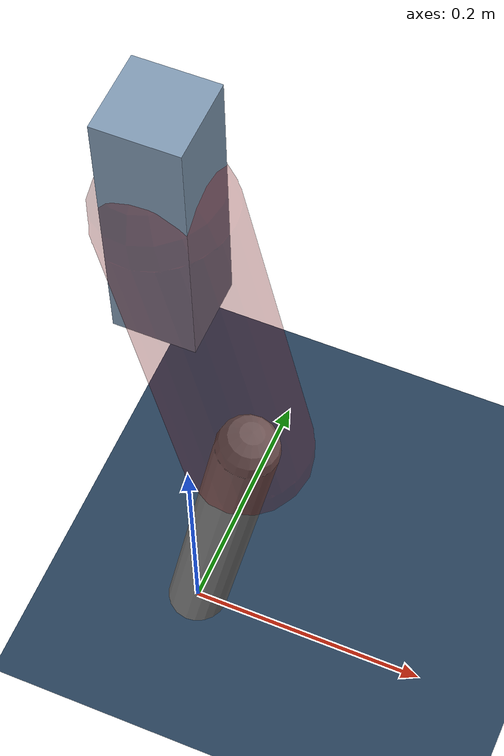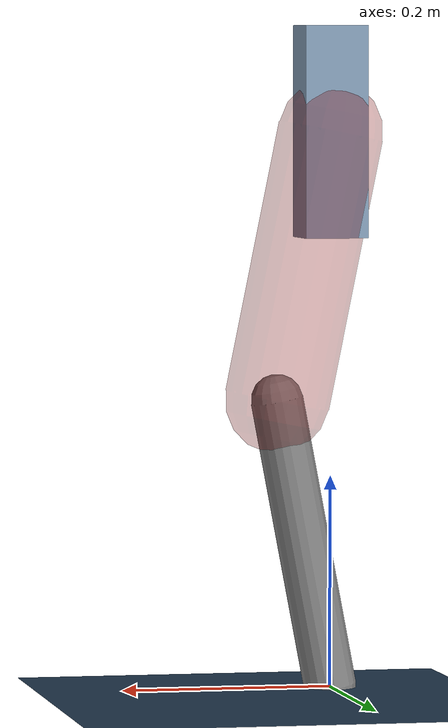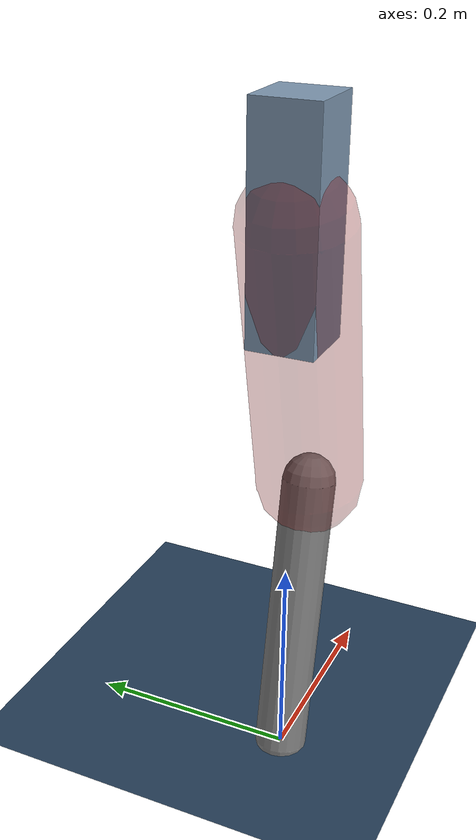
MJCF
<mujoco model="Hopper2D">
	<compiler inertiafromgeom="true" angle="radian" />
	<option timestep="0.001" integrator="implicit" cone="elliptic" solver="Newton" tolerance="1e-10" />

	<default>
		<geom contype="1" conaffinity="1" condim="3" friction="2 0.005 0.0001" solref="0.005 1" />
		<joint limited="true" damping="0.1" />
	</default>

	<asset>
		<texture name="skybox" type="skybox" builtin="gradient" rgb1=".4 .6 .8" rgb2="0 0 0" width="800" height="800" />
		<texture name="grid" type="2d" builtin="checker" rgb1=".1 .2 .3" rgb2=".2 .3 .4" width="300" height="300" mark="edge" markrgb=".2 .3 .4" />
		<material name="ground" texture="grid" texrepeat="1 1" texuniform="true" reflectance="0.1" />
		<material name="leg" rgba="0.5 0.6 0.7 1" />
	</asset>

	<worldbody>

		<geom name="floor" type="plane" size="5 5 0.25" material="ground" />

		<light directional="false" diffuse="0.8 0.8 0.8" specular="0.3 0.3 0.3" pos="0 0 2" dir="0 0 -1" />
		<light mode="targetbodycom" target="base" directional="false" diffuse="0.8 0.8 0.8" specular="0.3 0.3 0.3" pos="0 0 2" dir="0 0 -1" />

		<camera name="fixed" pos="0 -2 1" xyaxes="1 0 0 0 0 1" />
		<camera name="tracking" mode="trackcom" pos="0 -3 1" />

		<body name="root" pos="0 0 0.5261028903349421">
			<joint name="slide_x" type="slide" axis="1 0 0" range="-100 100" />
			<joint name="slide_z" type="slide" axis="0 0 1" range="0 10" />

			<body name="base" pos="0 0 0">
				<geom name="torso" type="box" size="0.03 0.03 0.1" mass="1.962" material="leg" />

				<body name="link1" pos="0 0 0" euler="0 1.3704373631431044 0">
					<joint type="hinge" axis="0 -1 0" pos="0 0 0" name="hinge1" limited="true" range="-3.14 3.14" stiffness="0" damping="0.1" />
					<geom name="thigh" type="capsule" fromto="0 0 0 0.25876427438765065 0 0" size="0.05" rgba="0.5 0 0 0.3" mass="0.8791871134078917" />

					<body name="link2" pos="0.25876427438765065 0 0" euler="0 0.387135009318509 0">
						<joint type="hinge" axis="0 -1 0" pos="0 0 0" name="hinge2" limited="true" range="-3.14 3.14" stiffness="0" damping="0.1" />
						<geom name="shank" type="capsule" fromto="0 0 0 0.27733861594729137 0 0" size="0.025" mass="0.4649708927578331" />

					</body>
				</body>
			</body>
		</body>
	</worldbody>

	<actuator>
		<motor name="torque1" joint="hinge1" ctrlrange="-26.516944194418777 26.516944194418777" ctrllimited="true" gear="1" />
		<motor name="torque2" joint="hinge2" ctrlrange="-88.04575769656111 88.04575769656111" ctrllimited="true" gear="1" />
	</actuator>
</mujoco>
